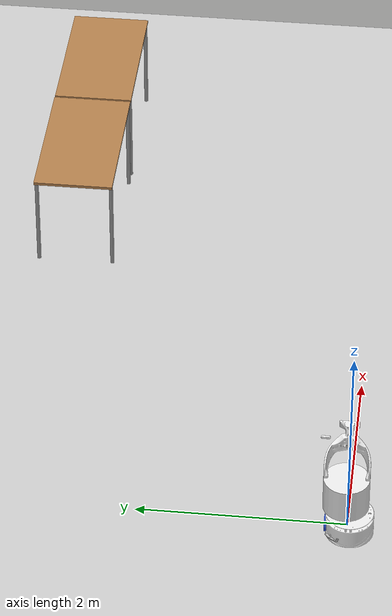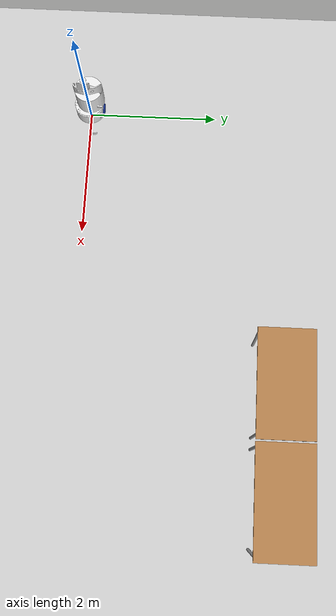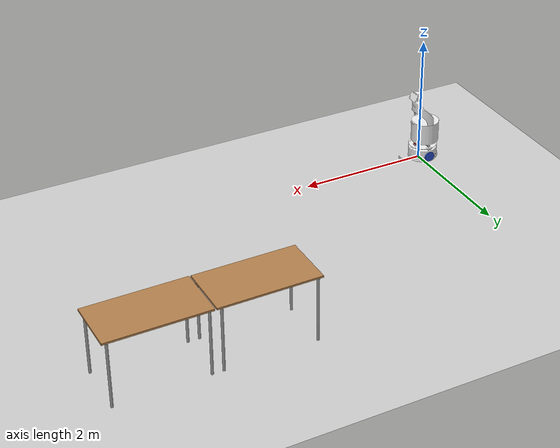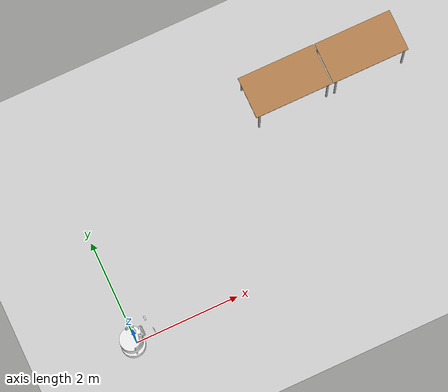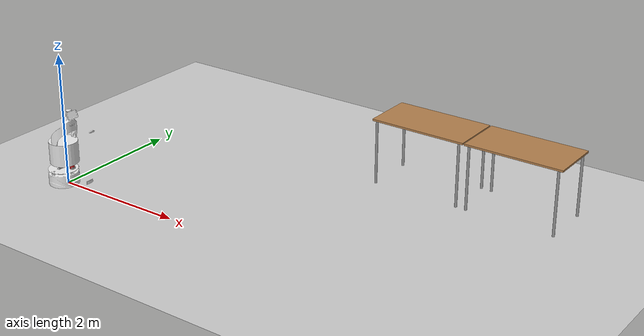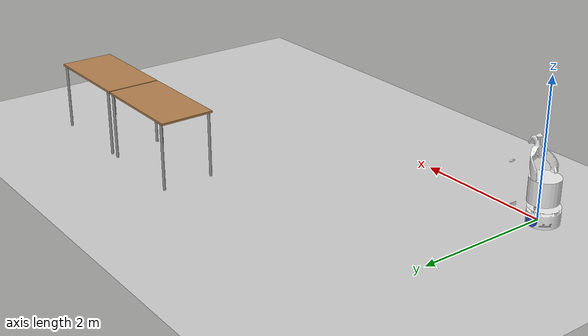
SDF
<sdf version="1.7">
 <world name="default">
  <model name="ground_plane">
   <static>1</static>
   <link name="link">
    <collision name="collision">
     <geometry><plane><normal>0 0 1</normal><size>100 100</size></plane></geometry>
     <surface>
      <contact><collide_bitmask>65535</collide_bitmask></contact>
      <friction><ode><mu>100</mu><mu2>50</mu2></ode></friction>
     </surface>
    </collision>
    <visual name="visual">
     <cast_shadows>0</cast_shadows>
     <geometry><plane><normal>0 0 1</normal><size>100 100</size></plane></geometry>
     <material>
      <script><uri>file://media/materials/scripts/gazebo.material</uri><name>Gazebo/Grey</name></script>
     </material>
    </visual>
   </link>
  </model>
  <model name="my_bot">
   <link name="base_link">
    <inertial>
     <pose>-0.066425 -0.011877 0.01512 0 -0 0</pose>
     <mass>2.53078</mass>
     <inertia>
      <ixx>3.92617</ixx>
      <ixy>-0.00703075</ixy>
      <ixz>-0.0105928</ixz>
      <iyy>3.13259</iyy>
      <iyz>-0.0048137</iyz>
      <izz>3.97093</izz>
     </inertia>
    </inertial>
    <collision name="base_link_fixed_joint_lump__charging_dock_collision">
     <pose>0.15 0 -0.03 0 -0 0</pose>
     <geometry>
      <mesh>
       <scale>0.001 0.001 0.001</scale>
       <uri>file:///home/morolinux/Documents/sbem_project_ws/install/robot_sbem/share/robot_sbem/description/meshes/charging_dock.stl</uri>
      </mesh>
     </geometry>
     <surface><friction><ode><mu>0.001</mu><mu2>0.001</mu2></ode></friction></surface>
    </collision>
    <collision name="base_link_fixed_joint_lump__chassis_collision_1">
     <pose>0 -0.04 -0.075 0 -0 0</pose>
     <geometry>
      <mesh>
       <scale>0.001 0.001 0.001</scale>
       <uri>file:///home/morolinux/Documents/sbem_project_ws/install/robot_sbem/share/robot_sbem/description/meshes/cover_frame_1.stl</uri>
      </mesh>
     </geometry>
    </collision>
    <collision name="base_link_fixed_joint_lump__caster_wheel_1_collision_2">
     <pose>0.04 0 -0.03 0 -0 0</pose>
     <geometry><sphere><radius>0.05</radius></sphere></geometry>
     <surface><friction><ode><mu>0.001</mu><mu2>0.001</mu2></ode></friction></surface>
    </collision>
    <collision name="base_link_fixed_joint_lump__caster_wheel_2_collision_3">
     <pose>-0.2 0 -0.03 0 -0 0</pose>
     <geometry><sphere><radius>0.05</radius></sphere></geometry>
     <surface><friction><ode><mu>0.001</mu><mu2>0.001</mu2></ode></friction></surface>
    </collision>
    <collision name="base_link_fixed_joint_lump__central_body_collision_4">
     <pose>-0.08 0 0.405 0 -0 0</pose>
     <geometry><cylinder><length>0.342</length><radius>0.216</radius></cylinder></geometry>
     <surface><friction><ode><mu>0.2</mu><mu2>0.2</mu2></ode></friction></surface>
    </collision>
    <collision name="base_link_fixed_joint_lump__upper_body_collision_5">
     <pose>-0.092447 -0.042954 -0.082 0 -0 0</pose>
     <geometry>
      <mesh>
       <scale>0.001 0.001 0.001</scale>
       <uri>file:///home/morolinux/Documents/sbem_project_ws/install/robot_sbem/share/robot_sbem/description/meshes/upper_body_1.stl</uri>
      </mesh>
     </geometry>
     <surface><friction><ode><mu>0.2</mu><mu2>0.2</mu2></ode></friction></surface>
    </collision>
    <collision name="base_link_fixed_joint_lump__dept_camera_collision_6">
     <pose>0.074599 0.183493 -0.225683 0 -0 0</pose>
     <geometry>
      <mesh>
       <scale>0.001 0.001 0.001</scale>
       <uri>file:///home/morolinux/Documents/sbem_project_ws/install/robot_sbem/share/robot_sbem/description/meshes/dept_camera_1.stl</uri>
      </mesh>
     </geometry>
     <surface><friction><ode><mu>0.2</mu><mu2>0.2</mu2></ode></friction></surface>
    </collision>
    <collision name="base_link_fixed_joint_lump__laser_frame_collision_7">
     <pose>0.07 0 0.2 0 0 -3.14159</pose>
     <geometry><cylinder><length>0.07</length><radius>0.035</radius></cylinder></geometry>
    </collision>
    <collision name="base_link_fixed_joint_lump__internal_body_collision_8">
     <pose>-0.1 -0.04 -0.078 0 -0 0</pose>
     <geometry>
      <mesh>
       <scale>0.001 0.001 0.001</scale>
       <uri>file:///home/morolinux/Documents/sbem_project_ws/install/robot_sbem/share/robot_sbem/description/meshes/base_link.stl</uri>
      </mesh>
     </geometry>
    </collision>
    <visual name="base_link_fixed_joint_lump__charging_dock_visual">
     <pose>0.15 0 -0.03 0 -0 0</pose>
     <geometry>
      <mesh>
       <scale>0.001 0.001 0.001</scale>
       <uri>file:///home/morolinux/Documents/sbem_project_ws/install/robot_sbem/share/robot_sbem/description/meshes/charging_dock.stl</uri>
      </mesh>
     </geometry>
     <material>
      <script><name>Gazebo/White</name><uri>file://media/materials/scripts/gazebo.material</uri></script>
     </material>
    </visual>
    <visual name="base_link_fixed_joint_lump__chassis_visual_1">
     <pose>-0.09 -0.04 -0.075 0 -0 0</pose>
     <geometry>
      <mesh>
       <scale>0.001 0.001 0.001</scale>
       <uri>file:///home/morolinux/Documents/sbem_project_ws/install/robot_sbem/share/robot_sbem/description/meshes/cover_frame_1.stl</uri>
      </mesh>
     </geometry>
     <material>
      <script><name>Gazebo/White</name><uri>file://media/materials/scripts/gazebo.material</uri></script>
     </material>
    </visual>
    <visual name="base_link_fixed_joint_lump__camera_link_visual_2">
     <pose>0.13 0 0.065 0 -0 0</pose>
     <geometry><box><size>0.01 0.03 0.03</size></box></geometry>
     <material>
      <script><name>Gazebo/Red</name><uri>file://media/materials/scripts/gazebo.material</uri></script>
     </material>
    </visual>
    <visual name="base_link_fixed_joint_lump__caster_wheel_1_visual_3">
     <pose>0.04 0 -0.03 0 -0 0</pose>
     <geometry><sphere><radius>0.05</radius></sphere></geometry>
     <material>
      <script><name>Gazebo/White</name><uri>file://media/materials/scripts/gazebo.material</uri></script>
     </material>
    </visual>
    <visual name="base_link_fixed_joint_lump__caster_wheel_2_visual_4">
     <pose>-0.2 0 -0.03 0 -0 0</pose>
     <geometry><sphere><radius>0.05</radius></sphere></geometry>
     <material>
      <script><name>Gazebo/White</name><uri>file://media/materials/scripts/gazebo.material</uri></script>
     </material>
    </visual>
    <visual name="base_link_fixed_joint_lump__central_body_visual_5">
     <pose>-0.08 0 0.405 0 -0 0</pose>
     <geometry><cylinder><length>0.342</length><radius>0.216</radius></cylinder></geometry>
     <material>
      <script><name>Gazebo/White</name><uri>file://media/materials/scripts/gazebo.material</uri></script>
     </material>
    </visual>
    <visual name="base_link_fixed_joint_lump__upper_body_visual_6">
     <pose>-0.092447 -0.042954 -0.082 0 -0 0</pose>
     <geometry>
      <mesh>
       <scale>0.001 0.001 0.001</scale>
       <uri>file:///home/morolinux/Documents/sbem_project_ws/install/robot_sbem/share/robot_sbem/description/meshes/upper_body_1.stl</uri>
      </mesh>
     </geometry>
     <material>
      <script><name>Gazebo/White</name><uri>file://media/materials/scripts/gazebo.material</uri></script>
     </material>
    </visual>
    <visual name="base_link_fixed_joint_lump__dept_camera_visual_7">
     <pose>0.074599 0.183493 -0.225683 0 -0 0</pose>
     <geometry>
      <mesh>
       <scale>0.001 0.001 0.001</scale>
       <uri>file:///home/morolinux/Documents/sbem_project_ws/install/robot_sbem/share/robot_sbem/description/meshes/dept_camera_1.stl</uri>
      </mesh>
     </geometry>
     <material>
      <script><name>Gazebo/White</name><uri>file://media/materials/scripts/gazebo.material</uri></script>
     </material>
    </visual>
    <visual name="base_link_fixed_joint_lump__laser_frame_visual_8">
     <pose>0.07 0 0.2 0 0 -3.14159</pose>
     <geometry><cylinder><length>0.07</length><radius>0.035</radius></cylinder></geometry>
     <material>
      <script><name>Gazebo/Red</name><uri>file://media/materials/scripts/gazebo.material</uri></script>
     </material>
    </visual>
    <visual name="base_link_fixed_joint_lump__internal_body_visual_9">
     <pose>-0.1 -0.04 -0.078 0 -0 0</pose>
     <geometry>
      <mesh>
       <scale>0.001 0.001 0.001</scale>
       <uri>file:///home/morolinux/Documents/sbem_project_ws/install/robot_sbem/share/robot_sbem/description/meshes/base_link.stl</uri>
      </mesh>
     </geometry>
    </visual>
    <sensor name="camera" type="camera">
     <visualize>1</visualize>
     <update_rate>10</update_rate>
     <camera>
      <horizontal_fov>1.089</horizontal_fov>
      <image><format>R8G8B8</format><width>640</width><height>480</height></image>
      <clip><near>0.05</near><far>8</far></clip>
      <distortion>
       <k1>-0.25</k1>
       <k2>0.12</k2>
       <k3>0</k3>
       <p1>-0.00028</p1>
       <p2>-5e-05</p2>
       <center>0.5 0.5</center>
      </distortion>
     </camera>
     <plugin name="camera_controller" filename="libgazebo_ros_camera.so">
      <frame_name>camera_link_optical</frame_name>
     </plugin>
     <pose>0.13 0 0.065 0 -0 0</pose>
    </sensor>
    <self_collide>1</self_collide>
    <sensor name="laser" type="ray">
     <visualize>1</visualize>
     <update_rate>10</update_rate>
     <ray>
      <scan>
       <horizontal>
        <samples>360</samples>
        <min_angle>-3.14</min_angle>
        <max_angle>3.14</max_angle>
        <resolution>1</resolution>
       </horizontal>
       <vertical><samples>1</samples><min_angle>0</min_angle><max_angle>0</max_angle></vertical>
      </scan>
      <range><min>0.1</min><max>12</max></range>
     </ray>
     <plugin name="laser_controller" filename="libgazebo_ros_ray_sensor.so">
      <ros><argument>~/out:=scan</argument></ros>
      <output_type>sensor_msgs/LaserScan</output_type>
      <frame_name>laser_frame</frame_name>
     </plugin>
     <pose>0.07 0 0.2 0 0 -3.14159</pose>
    </sensor>
   </link>
   <joint name="left_wheel_joint" type="revolute">
    <pose relative_to="base_link">-0.075 0.175 0 -1.5708 0 0</pose>
    <parent>base_link</parent>
    <child>left_wheel</child>
    <axis>
     <xyz>0 0 5</xyz>
     <limit><lower>-1e+16</lower><upper>1e+16</upper></limit>
     <dynamics><spring_reference>0</spring_reference><spring_stiffness>0</spring_stiffness></dynamics>
    </axis>
   </joint>
   <link name="left_wheel">
    <pose relative_to="left_wheel_joint">0 0 0 0 -0 0</pose>
    <inertial>
     <mass>1</mass>
     <inertia>
      <ixx>0.00173333</ixx>
      <ixy>0</ixy>
      <ixz>0</ixz>
      <iyy>0.00173333</iyy>
      <iyz>0</iyz>
      <izz>0.0032</izz>
     </inertia>
    </inertial>
    <collision name="left_wheel_collision">
     <geometry><cylinder><length>0.04</length><radius>0.08</radius></cylinder></geometry>
    </collision>
    <visual name="left_wheel_visual">
     <geometry><cylinder><length>0.04</length><radius>0.08</radius></cylinder></geometry>
     <material>
      <script><name>Gazebo/Blue</name><uri>file://media/materials/scripts/gazebo.material</uri></script>
     </material>
    </visual>
   </link>
   <joint name="right_wheel_joint" type="revolute">
    <pose relative_to="base_link">-0.075 -0.175 0 1.5708 -0 0</pose>
    <parent>base_link</parent>
    <child>right_wheel</child>
    <axis>
     <xyz>0 0 -1</xyz>
     <limit><lower>-1e+16</lower><upper>1e+16</upper></limit>
     <dynamics><spring_reference>0</spring_reference><spring_stiffness>0</spring_stiffness></dynamics>
    </axis>
   </joint>
   <link name="right_wheel">
    <pose relative_to="right_wheel_joint">0 0 0 0 -0 0</pose>
    <inertial>
     <mass>1</mass>
     <inertia>
      <ixx>0.00173333</ixx>
      <ixy>0</ixy>
      <ixz>0</ixz>
      <iyy>0.00173333</iyy>
      <iyz>0</iyz>
      <izz>0.0032</izz>
     </inertia>
    </inertial>
    <collision name="right_wheel_collision">
     <geometry><cylinder><length>0.04</length><radius>0.08</radius></cylinder></geometry>
    </collision>
    <visual name="right_wheel_visual">
     <geometry><cylinder><length>0.04</length><radius>0.08</radius></cylinder></geometry>
     <material>
      <script><name>Gazebo/Blue</name><uri>file://media/materials/scripts/gazebo.material</uri></script>
     </material>
    </visual>
   </link>
   <static>0</static>
   <plugin name="diff_drive" filename="libgazebo_ros_diff_drive.so">
    <left_joint>left_wheel_joint</left_joint>
    <right_joint>right_wheel_joint</right_joint>
    <wheel_separation>0.285</wheel_separation>
    <wheel_diameter>0.16</wheel_diameter>
    <max_wheel_torque>200</max_wheel_torque>
    <max_wheel_acceleration>10.0</max_wheel_acceleration>
    <odometry_frame>odom</odometry_frame>
    <robot_base_frame>base_link</robot_base_frame>
    <publish_odom>1</publish_odom>
    <publish_odom_tf>1</publish_odom_tf>
    <publish_wheel_tf>1</publish_wheel_tf>
   </plugin>
   <pose>0.002342 0.020838 0.08 -1e-06 -0 0.001039</pose>
  </model>
  <model name="table">
   <static>1</static>
   <link name="link">
    <collision name="surface">
     <pose>0 0 1 0 -0 0</pose>
     <geometry><box><size>1.5 0.8 0.03</size></box></geometry>
     <surface><friction><ode><mu>0.6</mu><mu2>0.6</mu2></ode></friction></surface>
    </collision>
    <visual name="visual1">
     <pose>0 0 1 0 -0 0</pose>
     <geometry><box><size>1.5 0.8 0.03</size></box></geometry>
     <material>
      <script><uri>file://media/materials/scripts/gazebo.material</uri><name>Gazebo/Wood</name></script>
     </material>
    </visual>
    <collision name="front_left_leg">
     <pose>0.68 0.38 0.5 0 -0 0</pose>
     <geometry><cylinder><radius>0.02</radius><length>1</length></cylinder></geometry>
    </collision>
    <visual name="front_left_leg">
     <pose>0.68 0.38 0.5 0 -0 0</pose>
     <geometry><cylinder><radius>0.02</radius><length>1</length></cylinder></geometry>
     <material>
      <script><uri>file://media/materials/scripts/gazebo.material</uri><name>Gazebo/Grey</name></script>
     </material>
    </visual>
    <collision name="front_right_leg">
     <pose>0.68 -0.38 0.5 0 -0 0</pose>
     <geometry><cylinder><radius>0.02</radius><length>1</length></cylinder></geometry>
    </collision>
    <visual name="front_right_leg">
     <pose>0.68 -0.38 0.5 0 -0 0</pose>
     <geometry><cylinder><radius>0.02</radius><length>1</length></cylinder></geometry>
     <material>
      <script><uri>file://media/materials/scripts/gazebo.material</uri><name>Gazebo/Grey</name></script>
     </material>
    </visual>
    <collision name="back_right_leg">
     <pose>-0.68 -0.38 0.5 0 -0 0</pose>
     <geometry><cylinder><radius>0.02</radius><length>1</length></cylinder></geometry>
    </collision>
    <visual name="back_right_leg">
     <pose>-0.68 -0.38 0.5 0 -0 0</pose>
     <geometry><cylinder><radius>0.02</radius><length>1</length></cylinder></geometry>
     <material>
      <script><uri>file://media/materials/scripts/gazebo.material</uri><name>Gazebo/Grey</name></script>
     </material>
    </visual>
    <collision name="back_left_leg">
     <pose>-0.68 0.38 0.5 0 -0 0</pose>
     <geometry><cylinder><radius>0.02</radius><length>1</length></cylinder></geometry>
    </collision>
    <visual name="back_left_leg">
     <pose>-0.68 0.38 0.5 0 -0 0</pose>
     <geometry><cylinder><radius>0.02</radius><length>1</length></cylinder></geometry>
     <material>
      <script><uri>file://media/materials/scripts/gazebo.material</uri><name>Gazebo/Grey</name></script>
     </material>
    </visual>
   </link>
   <pose>5.88826 3.06652 0 0 -0 0</pose>
  </model>
  <model name="table_0">
   <static>1</static>
   <link name="link">
    <collision name="surface">
     <pose>0 0 1 0 -0 0</pose>
     <geometry><box><size>1.5 0.8 0.03</size></box></geometry>
     <surface><friction><ode><mu>0.6</mu><mu2>0.6</mu2></ode></friction></surface>
    </collision>
    <visual name="visual1">
     <pose>0 0 1 0 -0 0</pose>
     <geometry><box><size>1.5 0.8 0.03</size></box></geometry>
     <material>
      <script><uri>file://media/materials/scripts/gazebo.material</uri><name>Gazebo/Wood</name></script>
     </material>
    </visual>
    <collision name="front_left_leg">
     <pose>0.68 0.38 0.5 0 -0 0</pose>
     <geometry><cylinder><radius>0.02</radius><length>1</length></cylinder></geometry>
    </collision>
    <visual name="front_left_leg">
     <pose>0.68 0.38 0.5 0 -0 0</pose>
     <geometry><cylinder><radius>0.02</radius><length>1</length></cylinder></geometry>
     <material>
      <script><uri>file://media/materials/scripts/gazebo.material</uri><name>Gazebo/Grey</name></script>
     </material>
    </visual>
    <collision name="front_right_leg">
     <pose>0.68 -0.38 0.5 0 -0 0</pose>
     <geometry><cylinder><radius>0.02</radius><length>1</length></cylinder></geometry>
    </collision>
    <visual name="front_right_leg">
     <pose>0.68 -0.38 0.5 0 -0 0</pose>
     <geometry><cylinder><radius>0.02</radius><length>1</length></cylinder></geometry>
     <material>
      <script><uri>file://media/materials/scripts/gazebo.material</uri><name>Gazebo/Grey</name></script>
     </material>
    </visual>
    <collision name="back_right_leg">
     <pose>-0.68 -0.38 0.5 0 -0 0</pose>
     <geometry><cylinder><radius>0.02</radius><length>1</length></cylinder></geometry>
    </collision>
    <visual name="back_right_leg">
     <pose>-0.68 -0.38 0.5 0 -0 0</pose>
     <geometry><cylinder><radius>0.02</radius><length>1</length></cylinder></geometry>
     <material>
      <script><uri>file://media/materials/scripts/gazebo.material</uri><name>Gazebo/Grey</name></script>
     </material>
    </visual>
    <collision name="back_left_leg">
     <pose>-0.68 0.38 0.5 0 -0 0</pose>
     <geometry><cylinder><radius>0.02</radius><length>1</length></cylinder></geometry>
    </collision>
    <visual name="back_left_leg">
     <pose>-0.68 0.38 0.5 0 -0 0</pose>
     <geometry><cylinder><radius>0.02</radius><length>1</length></cylinder></geometry>
     <material>
      <script><uri>file://media/materials/scripts/gazebo.material</uri><name>Gazebo/Grey</name></script>
     </material>
    </visual>
   </link>
   <pose>4.36423 3.06974 0 0 -0 0</pose>
  </model>
 </world>
</sdf>
